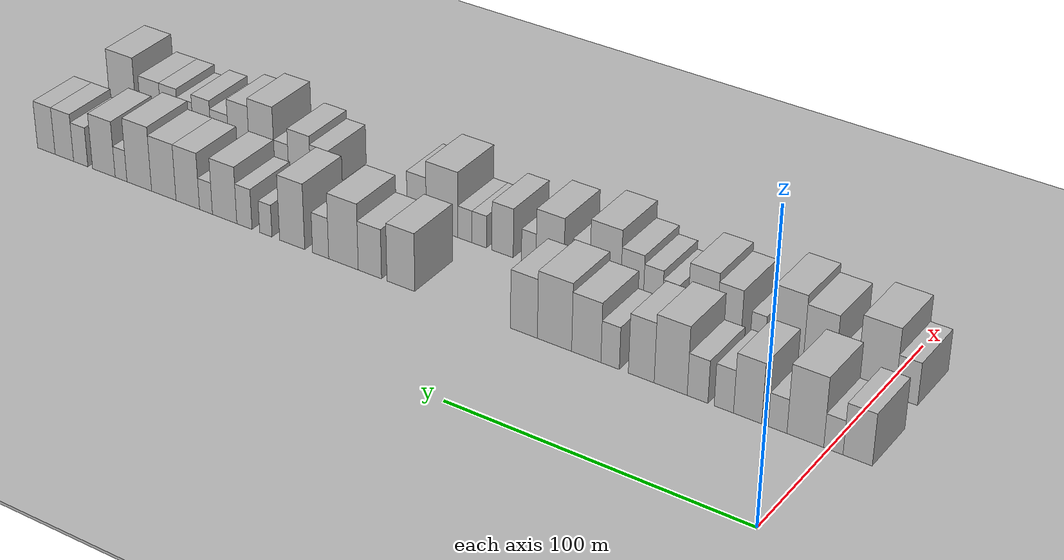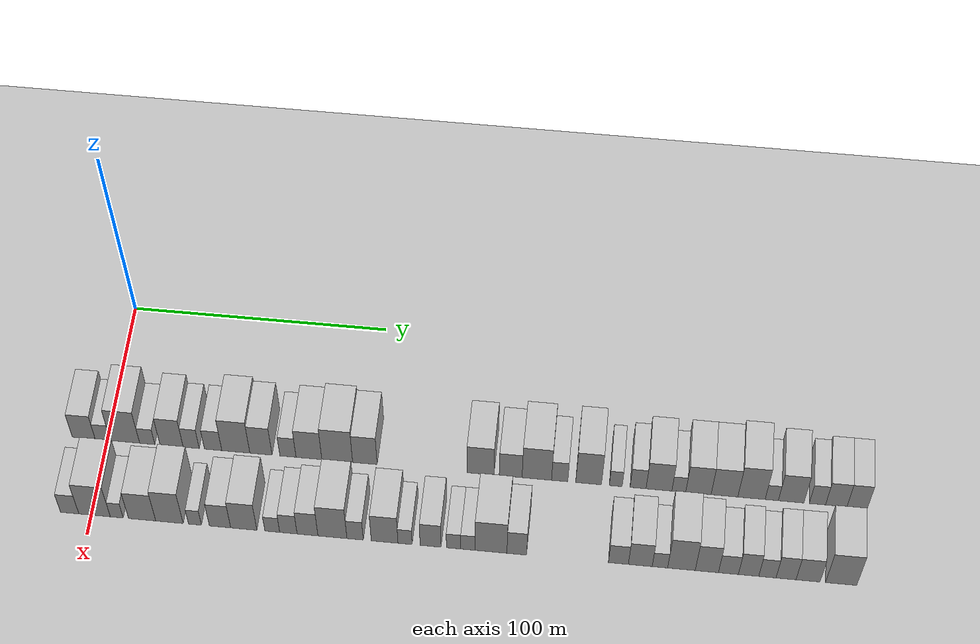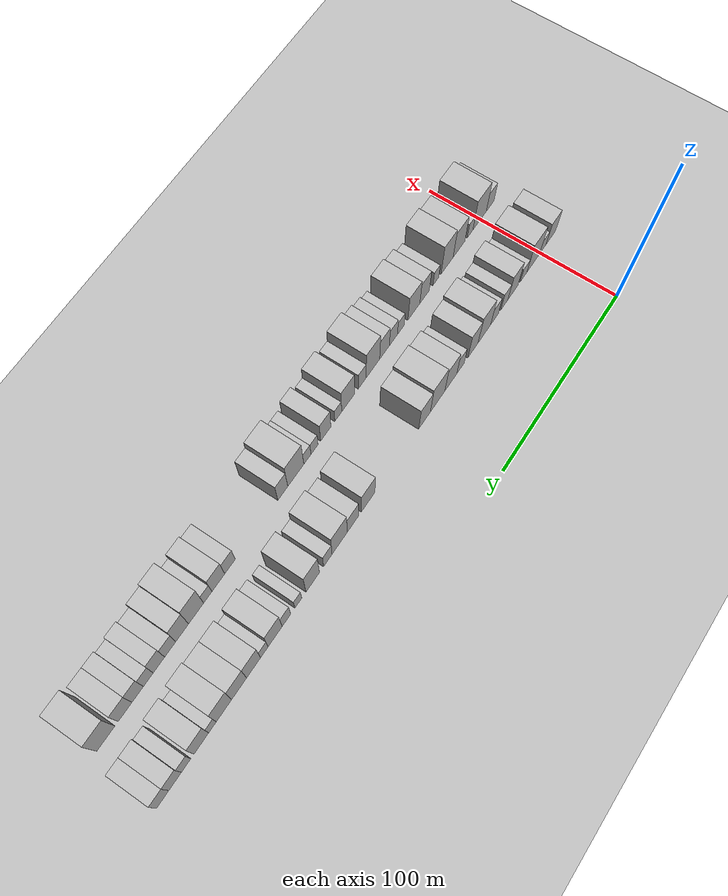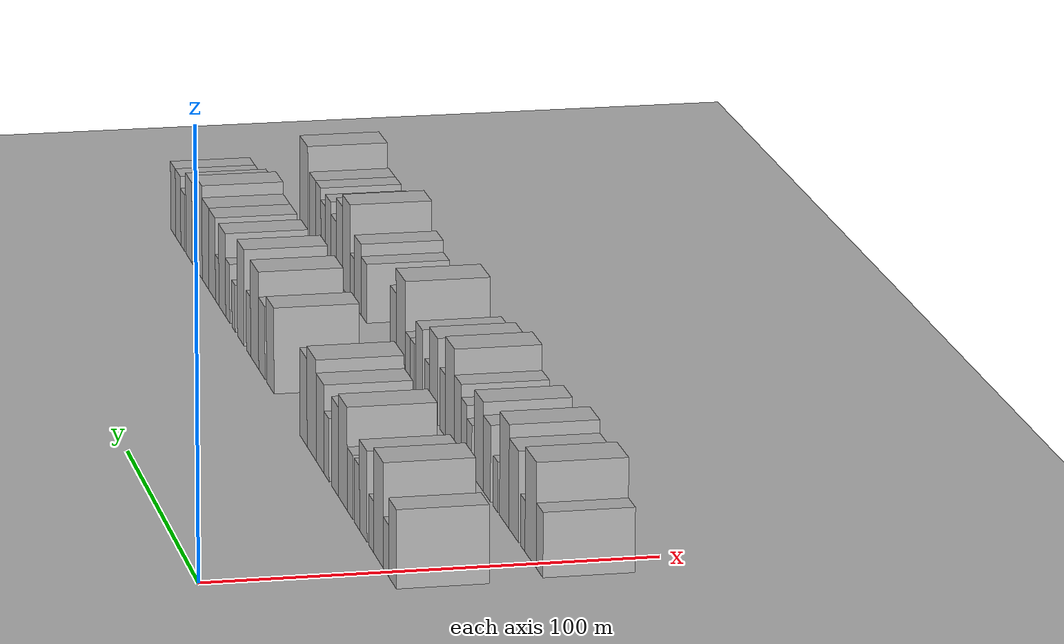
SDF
<sdf version="1.6">
 <world name="default">
  <include><name>ground_plane_1</name><uri>model://HANNAS_ground_plane</uri></include>
  <include>
   <name>ground_plane_2</name>
   <uri>model://HANNAS_ground_plane</uri>
   <pose>100 0 0  0 0 0</pose>
  </include>
  <model name="building_32">
   <static>1</static>
   <pose>50.0000 -9.0547 0 0.000000 0.000000 0.000000</pose>
   <link name="link">
    <pose>0 0 9.00 0 0 0</pose>
    <collision name="collision"><geometry><box><size>20.0000 8.8566 18.0000</size></box></geometry></collision>
    <visual name="visual">
     <cast_shadows>0</cast_shadows>
     <geometry><box><size>20.0000 8.8566 18.0000</size></box></geometry>
     <material>
      <script>
       <uri>model://HANNAS_wall/materials/scripts</uri>
       <uri>model://HANNAS_wall/materials/textures</uri>
       <name>vrc/HANNAS_wall</name>
      </script>
     </material>
    </visual>
   </link>
  </model>
  <model name="building_33">
   <static>1</static>
   <pose>50.0000 -1.6798 0 0.000000 0.000000 0.000000</pose>
   <link name="link">
    <pose>0 0 6.00 0 0 0</pose>
    <collision name="collision"><geometry><box><size>20.0000 5.8933 12.0000</size></box></geometry></collision>
    <visual name="visual">
     <cast_shadows>0</cast_shadows>
     <geometry><box><size>20.0000 5.8933 12.0000</size></box></geometry>
     <material>
      <script>
       <uri>model://HANNAS_wall/materials/scripts</uri>
       <uri>model://HANNAS_wall/materials/textures</uri>
       <name>vrc/HANNAS_wall</name>
      </script>
     </material>
    </visual>
   </link>
  </model>
  <model name="building_34">
   <static>1</static>
   <pose>50.0000 6.9483 0 0.000000 0.000000 0.000000</pose>
   <link name="link">
    <pose>0 0 12.00 0 0 0</pose>
    <collision name="collision"><geometry><box><size>20.0000 11.3630 24.0000</size></box></geometry></collision>
    <visual name="visual">
     <cast_shadows>0</cast_shadows>
     <geometry><box><size>20.0000 11.3630 24.0000</size></box></geometry>
     <material>
      <script>
       <uri>model://HANNAS_wall/materials/scripts</uri>
       <uri>model://HANNAS_wall/materials/textures</uri>
       <name>vrc/HANNAS_wall</name>
      </script>
     </material>
    </visual>
   </link>
  </model>
  <model name="building_35">
   <static>1</static>
   <pose>50.0000 15.5650 0 0.000000 0.000000 0.000000</pose>
   <link name="link">
    <pose>0 0 6.00 0 0 0</pose>
    <collision name="collision"><geometry><box><size>20.0000 5.8705 12.0000</size></box></geometry></collision>
    <visual name="visual">
     <cast_shadows>0</cast_shadows>
     <geometry><box><size>20.0000 5.8705 12.0000</size></box></geometry>
     <material>
      <script>
       <uri>model://HANNAS_wall/materials/scripts</uri>
       <uri>model://HANNAS_wall/materials/textures</uri>
       <name>vrc/HANNAS_wall</name>
      </script>
     </material>
    </visual>
   </link>
  </model>
  <model name="building_36">
   <static>1</static>
   <pose>50.0000 24.9754 0 0.000000 0.000000 0.000000</pose>
   <link name="link">
    <pose>0 0 10.50 0 0 0</pose>
    <collision name="collision"><geometry><box><size>20.0000 8.9502 21.0000</size></box></geometry></collision>
    <visual name="visual">
     <cast_shadows>0</cast_shadows>
     <geometry><box><size>20.0000 8.9502 21.0000</size></box></geometry>
     <material>
      <script>
       <uri>model://HANNAS_wall/materials/scripts</uri>
       <uri>model://HANNAS_wall/materials/textures</uri>
       <name>vrc/HANNAS_wall</name>
      </script>
     </material>
    </visual>
   </link>
  </model>
  <model name="building_37">
   <static>1</static>
   <pose>50.0000 32.5412 0 0.000000 0.000000 0.000000</pose>
   <link name="link">
    <pose>0 0 7.50 0 0 0</pose>
    <collision name="collision"><geometry><box><size>20.0000 6.1814 15.0000</size></box></geometry></collision>
    <visual name="visual">
     <cast_shadows>0</cast_shadows>
     <geometry><box><size>20.0000 6.1814 15.0000</size></box></geometry>
     <material>
      <script>
       <uri>model://HANNAS_wall/materials/scripts</uri>
       <uri>model://HANNAS_wall/materials/textures</uri>
       <name>vrc/HANNAS_wall</name>
      </script>
     </material>
    </visual>
   </link>
  </model>
  <model name="building_38">
   <static>1</static>
   <pose>50.0000 40.9875 0 0.000000 0.000000 0.000000</pose>
   <link name="link">
    <pose>0 0 7.50 0 0 0</pose>
    <collision name="collision"><geometry><box><size>20.0000 6.7112 15.0000</size></box></geometry></collision>
    <visual name="visual">
     <cast_shadows>0</cast_shadows>
     <geometry><box><size>20.0000 6.7112 15.0000</size></box></geometry>
     <material>
      <script>
       <uri>model://HANNAS_wall/materials/scripts</uri>
       <uri>model://HANNAS_wall/materials/textures</uri>
       <name>vrc/HANNAS_wall</name>
      </script>
     </material>
    </visual>
   </link>
  </model>
  <model name="building_39">
   <static>1</static>
   <pose>50.0000 49.7441 0 0.000000 0.000000 0.000000</pose>
   <link name="link">
    <pose>0 0 12.00 0 0 0</pose>
    <collision name="collision"><geometry><box><size>20.0000 10.8022 24.0000</size></box></geometry></collision>
    <visual name="visual">
     <cast_shadows>0</cast_shadows>
     <geometry><box><size>20.0000 10.8022 24.0000</size></box></geometry>
     <material>
      <script>
       <uri>model://HANNAS_wall/materials/scripts</uri>
       <uri>model://HANNAS_wall/materials/textures</uri>
       <name>vrc/HANNAS_wall</name>
      </script>
     </material>
    </visual>
   </link>
  </model>
  <model name="building_40">
   <static>1</static>
   <pose>50.0000 59.4152 0 0.000000 0.000000 0.000000</pose>
   <link name="link">
    <pose>0 0 10.50 0 0 0</pose>
    <collision name="collision"><geometry><box><size>20.0000 8.5400 21.0000</size></box></geometry></collision>
    <visual name="visual">
     <cast_shadows>0</cast_shadows>
     <geometry><box><size>20.0000 8.5400 21.0000</size></box></geometry>
     <material>
      <script>
       <uri>model://HANNAS_wall/materials/scripts</uri>
       <uri>model://HANNAS_wall/materials/textures</uri>
       <name>vrc/HANNAS_wall</name>
      </script>
     </material>
    </visual>
   </link>
  </model>
  <model name="building_41">
   <static>1</static>
   <pose>50.0000 69.7867 0 0.000000 0.000000 0.000000</pose>
   <link name="link">
    <pose>0 0 7.50 0 0 0</pose>
    <collision name="collision"><geometry><box><size>20.0000 6.2029 15.0000</size></box></geometry></collision>
    <visual name="visual">
     <cast_shadows>0</cast_shadows>
     <geometry><box><size>20.0000 6.2029 15.0000</size></box></geometry>
     <material>
      <script>
       <uri>model://HANNAS_wall/materials/scripts</uri>
       <uri>model://HANNAS_wall/materials/textures</uri>
       <name>vrc/HANNAS_wall</name>
      </script>
     </material>
    </visual>
   </link>
  </model>
  <model name="building_42">
   <static>1</static>
   <pose>50.0000 77.8425 0 0.000000 0.000000 0.000000</pose>
   <link name="link">
    <pose>0 0 10.50 0 0 0</pose>
    <collision name="collision"><geometry><box><size>20.0000 9.9086 21.0000</size></box></geometry></collision>
    <visual name="visual">
     <cast_shadows>0</cast_shadows>
     <geometry><box><size>20.0000 9.9086 21.0000</size></box></geometry>
     <material>
      <script>
       <uri>model://HANNAS_wall/materials/scripts</uri>
       <uri>model://HANNAS_wall/materials/textures</uri>
       <name>vrc/HANNAS_wall</name>
      </script>
     </material>
    </visual>
   </link>
  </model>
  <model name="building_43">
   <static>1</static>
   <pose>50.0000 88.6916 0 0.000000 0.000000 0.000000</pose>
   <link name="link">
    <pose>0 0 12.00 0 0 0</pose>
    <collision name="collision"><geometry><box><size>20.0000 11.7896 24.0000</size></box></geometry></collision>
    <visual name="visual">
     <cast_shadows>0</cast_shadows>
     <geometry><box><size>20.0000 11.7896 24.0000</size></box></geometry>
     <material>
      <script>
       <uri>model://HANNAS_wall/materials/scripts</uri>
       <uri>model://HANNAS_wall/materials/textures</uri>
       <name>vrc/HANNAS_wall</name>
      </script>
     </material>
    </visual>
   </link>
  </model>
  <model name="building_44">
   <static>1</static>
   <pose>50.0000 99.2791 0 0.000000 0.000000 0.000000</pose>
   <link name="link">
    <pose>0 0 10.50 0 0 0</pose>
    <collision name="collision"><geometry><box><size>20.0000 9.3855 21.0000</size></box></geometry></collision>
    <visual name="visual">
     <cast_shadows>0</cast_shadows>
     <geometry><box><size>20.0000 9.3855 21.0000</size></box></geometry>
     <material>
      <script>
       <uri>model://HANNAS_wall/materials/scripts</uri>
       <uri>model://HANNAS_wall/materials/textures</uri>
       <name>vrc/HANNAS_wall</name>
      </script>
     </material>
    </visual>
   </link>
  </model>
  <model name="building_45">
   <static>1</static>
   <pose>50.0000 143.3644 0 0.000000 0.000000 0.000000</pose>
   <link name="link">
    <pose>0 0 10.50 0 0 0</pose>
    <collision name="collision"><geometry><box><size>20.0000 10.2617 21.0000</size></box></geometry></collision>
    <visual name="visual">
     <cast_shadows>0</cast_shadows>
     <geometry><box><size>20.0000 10.2617 21.0000</size></box></geometry>
     <material>
      <script>
       <uri>model://HANNAS_wall/materials/scripts</uri>
       <uri>model://HANNAS_wall/materials/textures</uri>
       <name>vrc/HANNAS_wall</name>
      </script>
     </material>
    </visual>
   </link>
  </model>
  <model name="building_46">
   <static>1</static>
   <pose>50.0000 154.8397 0 0.000000 0.000000 0.000000</pose>
   <link name="link">
    <pose>0 0 9.00 0 0 0</pose>
    <collision name="collision"><geometry><box><size>20.0000 8.6888 18.0000</size></box></geometry></collision>
    <visual name="visual">
     <cast_shadows>0</cast_shadows>
     <geometry><box><size>20.0000 8.6888 18.0000</size></box></geometry>
     <material>
      <script>
       <uri>model://HANNAS_wall/materials/scripts</uri>
       <uri>model://HANNAS_wall/materials/textures</uri>
       <name>vrc/HANNAS_wall</name>
      </script>
     </material>
    </visual>
   </link>
  </model>
  <model name="building_47">
   <static>1</static>
   <pose>50.0000 164.7702 0 0.000000 0.000000 0.000000</pose>
   <link name="link">
    <pose>0 0 12.00 0 0 0</pose>
    <collision name="collision"><geometry><box><size>20.0000 11.1723 24.0000</size></box></geometry></collision>
    <visual name="visual">
     <cast_shadows>0</cast_shadows>
     <geometry><box><size>20.0000 11.1723 24.0000</size></box></geometry>
     <material>
      <script>
       <uri>model://HANNAS_wall/materials/scripts</uri>
       <uri>model://HANNAS_wall/materials/textures</uri>
       <name>vrc/HANNAS_wall</name>
      </script>
     </material>
    </visual>
   </link>
  </model>
  <model name="building_48">
   <static>1</static>
   <pose>50.0000 173.4471 0 0.000000 0.000000 0.000000</pose>
   <link name="link">
    <pose>0 0 7.50 0 0 0</pose>
    <collision name="collision"><geometry><box><size>20.0000 6.1817 15.0000</size></box></geometry></collision>
    <visual name="visual">
     <cast_shadows>0</cast_shadows>
     <geometry><box><size>20.0000 6.1817 15.0000</size></box></geometry>
     <material>
      <script>
       <uri>model://HANNAS_wall/materials/scripts</uri>
       <uri>model://HANNAS_wall/materials/textures</uri>
       <name>vrc/HANNAS_wall</name>
      </script>
     </material>
    </visual>
   </link>
  </model>
  <model name="building_49">
   <static>1</static>
   <pose>50.0000 184.4023 0 0.000000 0.000000 0.000000</pose>
   <link name="link">
    <pose>0 0 12.00 0 0 0</pose>
    <collision name="collision"><geometry><box><size>20.0000 9.7286 24.0000</size></box></geometry></collision>
    <visual name="visual">
     <cast_shadows>0</cast_shadows>
     <geometry><box><size>20.0000 9.7286 24.0000</size></box></geometry>
     <material>
      <script>
       <uri>model://HANNAS_wall/materials/scripts</uri>
       <uri>model://HANNAS_wall/materials/textures</uri>
       <name>vrc/HANNAS_wall</name>
      </script>
     </material>
    </visual>
   </link>
  </model>
  <model name="building_50">
   <static>1</static>
   <pose>50.0000 194.6865 0 0.000000 0.000000 0.000000</pose>
   <link name="link">
    <pose>0 0 6.00 0 0 0</pose>
    <collision name="collision"><geometry><box><size>20.0000 4.8399 12.0000</size></box></geometry></collision>
    <visual name="visual">
     <cast_shadows>0</cast_shadows>
     <geometry><box><size>20.0000 4.8399 12.0000</size></box></geometry>
     <material>
      <script>
       <uri>model://HANNAS_wall/materials/scripts</uri>
       <uri>model://HANNAS_wall/materials/textures</uri>
       <name>vrc/HANNAS_wall</name>
      </script>
     </material>
    </visual>
   </link>
  </model>
  <model name="building_51">
   <static>1</static>
   <pose>50.0000 203.1136 0 0.000000 0.000000 0.000000</pose>
   <link name="link">
    <pose>0 0 7.50 0 0 0</pose>
    <collision name="collision"><geometry><box><size>20.0000 6.0143 15.0000</size></box></geometry></collision>
    <visual name="visual">
     <cast_shadows>0</cast_shadows>
     <geometry><box><size>20.0000 6.0143 15.0000</size></box></geometry>
     <material>
      <script>
       <uri>model://HANNAS_wall/materials/scripts</uri>
       <uri>model://HANNAS_wall/materials/textures</uri>
       <name>vrc/HANNAS_wall</name>
      </script>
     </material>
    </visual>
   </link>
  </model>
  <model name="building_52">
   <static>1</static>
   <pose>50.0000 210.9976 0 0.000000 0.000000 0.000000</pose>
   <link name="link">
    <pose>0 0 10.50 0 0 0</pose>
    <collision name="collision"><geometry><box><size>20.0000 9.7535 21.0000</size></box></geometry></collision>
    <visual name="visual">
     <cast_shadows>0</cast_shadows>
     <geometry><box><size>20.0000 9.7535 21.0000</size></box></geometry>
     <material>
      <script>
       <uri>model://HANNAS_wall/materials/scripts</uri>
       <uri>model://HANNAS_wall/materials/textures</uri>
       <name>vrc/HANNAS_wall</name>
      </script>
     </material>
    </visual>
   </link>
  </model>
  <model name="building_53">
   <static>1</static>
   <pose>50.0000 218.4777 0 0.000000 0.000000 0.000000</pose>
   <link name="link">
    <pose>0 0 6.00 0 0 0</pose>
    <collision name="collision"><geometry><box><size>20.0000 5.2067 12.0000</size></box></geometry></collision>
    <visual name="visual">
     <cast_shadows>0</cast_shadows>
     <geometry><box><size>20.0000 5.2067 12.0000</size></box></geometry>
     <material>
      <script>
       <uri>model://HANNAS_wall/materials/scripts</uri>
       <uri>model://HANNAS_wall/materials/textures</uri>
       <name>vrc/HANNAS_wall</name>
      </script>
     </material>
    </visual>
   </link>
  </model>
  <model name="building_54">
   <static>1</static>
   <pose>50.0000 225.8662 0 0.000000 0.000000 0.000000</pose>
   <link name="link">
    <pose>0 0 10.50 0 0 0</pose>
    <collision name="collision"><geometry><box><size>20.0000 9.5703 21.0000</size></box></geometry></collision>
    <visual name="visual">
     <cast_shadows>0</cast_shadows>
     <geometry><box><size>20.0000 9.5703 21.0000</size></box></geometry>
     <material>
      <script>
       <uri>model://HANNAS_wall/materials/scripts</uri>
       <uri>model://HANNAS_wall/materials/textures</uri>
       <name>vrc/HANNAS_wall</name>
      </script>
     </material>
    </visual>
   </link>
  </model>
  <model name="building_55">
   <static>1</static>
   <pose>50.0000 235.6811 0 0.000000 0.000000 0.000000</pose>
   <link name="link">
    <pose>0 0 10.50 0 0 0</pose>
    <collision name="collision"><geometry><box><size>20.0000 10.0596 21.0000</size></box></geometry></collision>
    <visual name="visual">
     <cast_shadows>0</cast_shadows>
     <geometry><box><size>20.0000 10.0596 21.0000</size></box></geometry>
     <material>
      <script>
       <uri>model://HANNAS_wall/materials/scripts</uri>
       <uri>model://HANNAS_wall/materials/textures</uri>
       <name>vrc/HANNAS_wall</name>
      </script>
     </material>
    </visual>
   </link>
  </model>
  <model name="building_56">
   <static>1</static>
   <pose>50.0000 245.8438 0 0.000000 0.000000 0.000000</pose>
   <link name="link">
    <pose>0 0 12.00 0 0 0</pose>
    <collision name="collision"><geometry><box><size>20.0000 10.2658 24.0000</size></box></geometry></collision>
    <visual name="visual">
     <cast_shadows>0</cast_shadows>
     <geometry><box><size>20.0000 10.2658 24.0000</size></box></geometry>
     <material>
      <script>
       <uri>model://HANNAS_wall/materials/scripts</uri>
       <uri>model://HANNAS_wall/materials/textures</uri>
       <name>vrc/HANNAS_wall</name>
      </script>
     </material>
    </visual>
   </link>
  </model>
  <model name="building_57">
   <static>1</static>
   <pose>50.0000 253.4522 0 0.000000 0.000000 0.000000</pose>
   <link name="link">
    <pose>0 0 6.00 0 0 0</pose>
    <collision name="collision"><geometry><box><size>20.0000 4.9509 12.0000</size></box></geometry></collision>
    <visual name="visual">
     <cast_shadows>0</cast_shadows>
     <geometry><box><size>20.0000 4.9509 12.0000</size></box></geometry>
     <material>
      <script>
       <uri>model://HANNAS_wall/materials/scripts</uri>
       <uri>model://HANNAS_wall/materials/textures</uri>
       <name>vrc/HANNAS_wall</name>
      </script>
     </material>
    </visual>
   </link>
  </model>
  <model name="building_58">
   <static>1</static>
   <pose>50.0000 260.7237 0 0.000000 0.000000 0.000000</pose>
   <link name="link">
    <pose>0 0 10.50 0 0 0</pose>
    <collision name="collision"><geometry><box><size>20.0000 9.5921 21.0000</size></box></geometry></collision>
    <visual name="visual">
     <cast_shadows>0</cast_shadows>
     <geometry><box><size>20.0000 9.5921 21.0000</size></box></geometry>
     <material>
      <script>
       <uri>model://HANNAS_wall/materials/scripts</uri>
       <uri>model://HANNAS_wall/materials/textures</uri>
       <name>vrc/HANNAS_wall</name>
      </script>
     </material>
    </visual>
   </link>
  </model>
  <model name="building_59">
   <static>1</static>
   <pose>50.0000 270.5678 0 0.000000 0.000000 0.000000</pose>
   <link name="link">
    <pose>0 0 7.50 0 0 0</pose>
    <collision name="collision"><geometry><box><size>20.0000 6.0962 15.0000</size></box></geometry></collision>
    <visual name="visual">
     <cast_shadows>0</cast_shadows>
     <geometry><box><size>20.0000 6.0962 15.0000</size></box></geometry>
     <material>
      <script>
       <uri>model://HANNAS_wall/materials/scripts</uri>
       <uri>model://HANNAS_wall/materials/textures</uri>
       <name>vrc/HANNAS_wall</name>
      </script>
     </material>
    </visual>
   </link>
  </model>
  <model name="building_60">
   <static>1</static>
   <pose>50.0000 277.6173 0 0.000000 0.000000 0.000000</pose>
   <link name="link">
    <pose>0 0 9.00 0 0 0</pose>
    <collision name="collision"><geometry><box><size>20.0000 8.0026 18.0000</size></box></geometry></collision>
    <visual name="visual">
     <cast_shadows>0</cast_shadows>
     <geometry><box><size>20.0000 8.0026 18.0000</size></box></geometry>
     <material>
      <script>
       <uri>model://HANNAS_wall/materials/scripts</uri>
       <uri>model://HANNAS_wall/materials/textures</uri>
       <name>vrc/HANNAS_wall</name>
      </script>
     </material>
    </visual>
   </link>
  </model>
  <model name="building_61">
   <static>1</static>
   <pose>50.0000 285.4293 0 0.000000 0.000000 0.000000</pose>
   <link name="link">
    <pose>0 0 9.00 0 0 0</pose>
    <collision name="collision"><geometry><box><size>20.0000 7.6214 18.0000</size></box></geometry></collision>
    <visual name="visual">
     <cast_shadows>0</cast_shadows>
     <geometry><box><size>20.0000 7.6214 18.0000</size></box></geometry>
     <material>
      <script>
       <uri>model://HANNAS_wall/materials/scripts</uri>
       <uri>model://HANNAS_wall/materials/textures</uri>
       <name>vrc/HANNAS_wall</name>
      </script>
     </material>
    </visual>
   </link>
  </model>
  <model name="building_92">
   <static>1</static>
   <pose>82.0000 -8.1214 0 0.000000 0.000000 0.000000</pose>
   <link name="link">
    <pose>0 0 7.50 0 0 0</pose>
    <collision name="collision"><geometry><box><size>20.0000 6.9584 15.0000</size></box></geometry></collision>
    <visual name="visual">
     <cast_shadows>0</cast_shadows>
     <geometry><box><size>20.0000 6.9584 15.0000</size></box></geometry>
     <material>
      <script>
       <uri>model://HANNAS_wall/materials/scripts</uri>
       <uri>model://HANNAS_wall/materials/textures</uri>
       <name>vrc/HANNAS_wall</name>
      </script>
     </material>
    </visual>
   </link>
  </model>
  <model name="building_93">
   <static>1</static>
   <pose>82.0000 1.3312 0 0.000000 0.000000 0.000000</pose>
   <link name="link">
    <pose>0 0 12.00 0 0 0</pose>
    <collision name="collision"><geometry><box><size>20.0000 11.9467 24.0000</size></box></geometry></collision>
    <visual name="visual">
     <cast_shadows>0</cast_shadows>
     <geometry><box><size>20.0000 11.9467 24.0000</size></box></geometry>
     <material>
      <script>
       <uri>model://HANNAS_wall/materials/scripts</uri>
       <uri>model://HANNAS_wall/materials/textures</uri>
       <name>vrc/HANNAS_wall</name>
      </script>
     </material>
    </visual>
   </link>
  </model>
  <model name="building_94">
   <static>1</static>
   <pose>82.0000 9.7539 0 0.000000 0.000000 0.000000</pose>
   <link name="link">
    <pose>0 0 6.00 0 0 0</pose>
    <collision name="collision"><geometry><box><size>20.0000 4.8987 12.0000</size></box></geometry></collision>
    <visual name="visual">
     <cast_shadows>0</cast_shadows>
     <geometry><box><size>20.0000 4.8987 12.0000</size></box></geometry>
     <material>
      <script>
       <uri>model://HANNAS_wall/materials/scripts</uri>
       <uri>model://HANNAS_wall/materials/textures</uri>
       <name>vrc/HANNAS_wall</name>
      </script>
     </material>
    </visual>
   </link>
  </model>
  <model name="building_95">
   <static>1</static>
   <pose>82.0000 19.3545 0 0.000000 0.000000 0.000000</pose>
   <link name="link">
    <pose>0 0 10.50 0 0 0</pose>
    <collision name="collision"><geometry><box><size>20.0000 10.3026 21.0000</size></box></geometry></collision>
    <visual name="visual">
     <cast_shadows>0</cast_shadows>
     <geometry><box><size>20.0000 10.3026 21.0000</size></box></geometry>
     <material>
      <script>
       <uri>model://HANNAS_wall/materials/scripts</uri>
       <uri>model://HANNAS_wall/materials/textures</uri>
       <name>vrc/HANNAS_wall</name>
      </script>
     </material>
    </visual>
   </link>
  </model>
  <model name="building_96">
   <static>1</static>
   <pose>82.0000 29.7015 0 0.000000 0.000000 0.000000</pose>
   <link name="link">
    <pose>0 0 12.00 0 0 0</pose>
    <collision name="collision"><geometry><box><size>20.0000 10.3913 24.0000</size></box></geometry></collision>
    <visual name="visual">
     <cast_shadows>0</cast_shadows>
     <geometry><box><size>20.0000 10.3913 24.0000</size></box></geometry>
     <material>
      <script>
       <uri>model://HANNAS_wall/materials/scripts</uri>
       <uri>model://HANNAS_wall/materials/textures</uri>
       <name>vrc/HANNAS_wall</name>
      </script>
     </material>
    </visual>
   </link>
  </model>
  <model name="building_97">
   <static>1</static>
   <pose>82.0000 39.3515 0 0.000000 0.000000 0.000000</pose>
   <link name="link">
    <pose>0 0 6.00 0 0 0</pose>
    <collision name="collision"><geometry><box><size>20.0000 4.9087 12.0000</size></box></geometry></collision>
    <visual name="visual">
     <cast_shadows>0</cast_shadows>
     <geometry><box><size>20.0000 4.9087 12.0000</size></box></geometry>
     <material>
      <script>
       <uri>model://HANNAS_wall/materials/scripts</uri>
       <uri>model://HANNAS_wall/materials/textures</uri>
       <name>vrc/HANNAS_wall</name>
      </script>
     </material>
    </visual>
   </link>
  </model>
  <model name="building_98">
   <static>1</static>
   <pose>82.0000 48.8264 0 0.000000 0.000000 0.000000</pose>
   <link name="link">
    <pose>0 0 9.00 0 0 0</pose>
    <collision name="collision"><geometry><box><size>20.0000 8.0411 18.0000</size></box></geometry></collision>
    <visual name="visual">
     <cast_shadows>0</cast_shadows>
     <geometry><box><size>20.0000 8.0411 18.0000</size></box></geometry>
     <material>
      <script>
       <uri>model://HANNAS_wall/materials/scripts</uri>
       <uri>model://HANNAS_wall/materials/textures</uri>
       <name>vrc/HANNAS_wall</name>
      </script>
     </material>
    </visual>
   </link>
  </model>
  <model name="building_99">
   <static>1</static>
   <pose>82.0000 57.7939 0 0.000000 0.000000 0.000000</pose>
   <link name="link">
    <pose>0 0 10.50 0 0 0</pose>
    <collision name="collision"><geometry><box><size>20.0000 9.8940 21.0000</size></box></geometry></collision>
    <visual name="visual">
     <cast_shadows>0</cast_shadows>
     <geometry><box><size>20.0000 9.8940 21.0000</size></box></geometry>
     <material>
      <script>
       <uri>model://HANNAS_wall/materials/scripts</uri>
       <uri>model://HANNAS_wall/materials/textures</uri>
       <name>vrc/HANNAS_wall</name>
      </script>
     </material>
    </visual>
   </link>
  </model>
  <model name="building_100">
   <static>1</static>
   <pose>82.0000 68.5317 0 0.000000 0.000000 0.000000</pose>
   <link name="link">
    <pose>0 0 6.00 0 0 0</pose>
    <collision name="collision"><geometry><box><size>20.0000 5.5816 12.0000</size></box></geometry></collision>
    <visual name="visual">
     <cast_shadows>0</cast_shadows>
     <geometry><box><size>20.0000 5.5816 12.0000</size></box></geometry>
     <material>
      <script>
       <uri>model://HANNAS_wall/materials/scripts</uri>
       <uri>model://HANNAS_wall/materials/textures</uri>
       <name>vrc/HANNAS_wall</name>
      </script>
     </material>
    </visual>
   </link>
  </model>
  <model name="building_101">
   <static>1</static>
   <pose>82.0000 74.5952 0 0.000000 0.000000 0.000000</pose>
   <link name="link">
    <pose>0 0 7.50 0 0 0</pose>
    <collision name="collision"><geometry><box><size>20.0000 6.5453 15.0000</size></box></geometry></collision>
    <visual name="visual">
     <cast_shadows>0</cast_shadows>
     <geometry><box><size>20.0000 6.5453 15.0000</size></box></geometry>
     <material>
      <script>
       <uri>model://HANNAS_wall/materials/scripts</uri>
       <uri>model://HANNAS_wall/materials/textures</uri>
       <name>vrc/HANNAS_wall</name>
      </script>
     </material>
    </visual>
   </link>
  </model>
  <model name="building_102">
   <static>1</static>
   <pose>82.0000 81.7835 0 0.000000 0.000000 0.000000</pose>
   <link name="link">
    <pose>0 0 9.00 0 0 0</pose>
    <collision name="collision"><geometry><box><size>20.0000 7.8313 18.0000</size></box></geometry></collision>
    <visual name="visual">
     <cast_shadows>0</cast_shadows>
     <geometry><box><size>20.0000 7.8313 18.0000</size></box></geometry>
     <material>
      <script>
       <uri>model://HANNAS_wall/materials/scripts</uri>
       <uri>model://HANNAS_wall/materials/textures</uri>
       <name>vrc/HANNAS_wall</name>
      </script>
     </material>
    </visual>
   </link>
  </model>
  <model name="building_103">
   <static>1</static>
   <pose>82.0000 91.1404 0 0.000000 0.000000 0.000000</pose>
   <link name="link">
    <pose>0 0 12.00 0 0 0</pose>
    <collision name="collision"><geometry><box><size>20.0000 10.8824 24.0000</size></box></geometry></collision>
    <visual name="visual">
     <cast_shadows>0</cast_shadows>
     <geometry><box><size>20.0000 10.8824 24.0000</size></box></geometry>
     <material>
      <script>
       <uri>model://HANNAS_wall/materials/scripts</uri>
       <uri>model://HANNAS_wall/materials/textures</uri>
       <name>vrc/HANNAS_wall</name>
      </script>
     </material>
    </visual>
   </link>
  </model>
  <model name="building_104">
   <static>1</static>
   <pose>82.0000 99.6464 0 0.000000 0.000000 0.000000</pose>
   <link name="link">
    <pose>0 0 7.50 0 0 0</pose>
    <collision name="collision"><geometry><box><size>20.0000 6.1297 15.0000</size></box></geometry></collision>
    <visual name="visual">
     <cast_shadows>0</cast_shadows>
     <geometry><box><size>20.0000 6.1297 15.0000</size></box></geometry>
     <material>
      <script>
       <uri>model://HANNAS_wall/materials/scripts</uri>
       <uri>model://HANNAS_wall/materials/textures</uri>
       <name>vrc/HANNAS_wall</name>
      </script>
     </material>
    </visual>
   </link>
  </model>
  <model name="building_105">
   <static>1</static>
   <pose>82.0000 110.7050 0 0.000000 0.000000 0.000000</pose>
   <link name="link">
    <pose>0 0 10.50 0 0 0</pose>
    <collision name="collision"><geometry><box><size>20.0000 9.9876 21.0000</size></box></geometry></collision>
    <visual name="visual">
     <cast_shadows>0</cast_shadows>
     <geometry><box><size>20.0000 9.9876 21.0000</size></box></geometry>
     <material>
      <script>
       <uri>model://HANNAS_wall/materials/scripts</uri>
       <uri>model://HANNAS_wall/materials/textures</uri>
       <name>vrc/HANNAS_wall</name>
      </script>
     </material>
    </visual>
   </link>
  </model>
  <model name="building_106">
   <static>1</static>
   <pose>82.0000 118.3395 0 0.000000 0.000000 0.000000</pose>
   <link name="link">
    <pose>0 0 6.00 0 0 0</pose>
    <collision name="collision"><geometry><box><size>20.0000 5.2813 12.0000</size></box></geometry></collision>
    <visual name="visual">
     <cast_shadows>0</cast_shadows>
     <geometry><box><size>20.0000 5.2813 12.0000</size></box></geometry>
     <material>
      <script>
       <uri>model://HANNAS_wall/materials/scripts</uri>
       <uri>model://HANNAS_wall/materials/textures</uri>
       <name>vrc/HANNAS_wall</name>
      </script>
     </material>
    </visual>
   </link>
  </model>
  <model name="building_107">
   <static>1</static>
   <pose>82.0000 127.8945 0 0.000000 0.000000 0.000000</pose>
   <link name="link">
    <pose>0 0 9.00 0 0 0</pose>
    <collision name="collision"><geometry><box><size>20.0000 7.8286 18.0000</size></box></geometry></collision>
    <visual name="visual">
     <cast_shadows>0</cast_shadows>
     <geometry><box><size>20.0000 7.8286 18.0000</size></box></geometry>
     <material>
      <script>
       <uri>model://HANNAS_wall/materials/scripts</uri>
       <uri>model://HANNAS_wall/materials/textures</uri>
       <name>vrc/HANNAS_wall</name>
      </script>
     </material>
    </visual>
   </link>
  </model>
  <model name="building_108">
   <static>1</static>
   <pose>82.0000 136.4734 0 0.000000 0.000000 0.000000</pose>
   <link name="link">
    <pose>0 0 6.00 0 0 0</pose>
    <collision name="collision"><geometry><box><size>20.0000 5.3293 12.0000</size></box></geometry></collision>
    <visual name="visual">
     <cast_shadows>0</cast_shadows>
     <geometry><box><size>20.0000 5.3293 12.0000</size></box></geometry>
     <material>
      <script>
       <uri>model://HANNAS_wall/materials/scripts</uri>
       <uri>model://HANNAS_wall/materials/textures</uri>
       <name>vrc/HANNAS_wall</name>
      </script>
     </material>
    </visual>
   </link>
  </model>
  <model name="building_109">
   <static>1</static>
   <pose>82.0000 141.7924 0 0.000000 0.000000 0.000000</pose>
   <link name="link">
    <pose>0 0 6.00 0 0 0</pose>
    <collision name="collision"><geometry><box><size>20.0000 5.3087 12.0000</size></box></geometry></collision>
    <visual name="visual">
     <cast_shadows>0</cast_shadows>
     <geometry><box><size>20.0000 5.3087 12.0000</size></box></geometry>
     <material>
      <script>
       <uri>model://HANNAS_wall/materials/scripts</uri>
       <uri>model://HANNAS_wall/materials/textures</uri>
       <name>vrc/HANNAS_wall</name>
      </script>
     </material>
    </visual>
   </link>
  </model>
  <model name="building_110">
   <static>1</static>
   <pose>82.0000 150.4068 0 0.000000 0.000000 0.000000</pose>
   <link name="link">
    <pose>0 0 12.00 0 0 0</pose>
    <collision name="collision"><geometry><box><size>20.0000 11.9202 24.0000</size></box></geometry></collision>
    <visual name="visual">
     <cast_shadows>0</cast_shadows>
     <geometry><box><size>20.0000 11.9202 24.0000</size></box></geometry>
     <material>
      <script>
       <uri>model://HANNAS_wall/materials/scripts</uri>
       <uri>model://HANNAS_wall/materials/textures</uri>
       <name>vrc/HANNAS_wall</name>
      </script>
     </material>
    </visual>
   </link>
  </model>
  <model name="building_111">
   <static>1</static>
   <pose>82.0000 160.0184 0 0.000000 0.000000 0.000000</pose>
   <link name="link">
    <pose>0 0 9.00 0 0 0</pose>
    <collision name="collision"><geometry><box><size>20.0000 7.3029 18.0000</size></box></geometry></collision>
    <visual name="visual">
     <cast_shadows>0</cast_shadows>
     <geometry><box><size>20.0000 7.3029 18.0000</size></box></geometry>
     <material>
      <script>
       <uri>model://HANNAS_wall/materials/scripts</uri>
       <uri>model://HANNAS_wall/materials/textures</uri>
       <name>vrc/HANNAS_wall</name>
      </script>
     </material>
    </visual>
   </link>
  </model>
  <model name="building_112">
   <static>1</static>
   <pose>82.0000 197.7574 0 0.000000 0.000000 0.000000</pose>
   <link name="link">
    <pose>0 0 7.50 0 0 0</pose>
    <collision name="collision"><geometry><box><size>20.0000 7.3917 15.0000</size></box></geometry></collision>
    <visual name="visual">
     <cast_shadows>0</cast_shadows>
     <geometry><box><size>20.0000 7.3917 15.0000</size></box></geometry>
     <material>
      <script>
       <uri>model://HANNAS_wall/materials/scripts</uri>
       <uri>model://HANNAS_wall/materials/textures</uri>
       <name>vrc/HANNAS_wall</name>
      </script>
     </material>
    </visual>
   </link>
  </model>
  <model name="building_113">
   <static>1</static>
   <pose>82.0000 205.8638 0 0.000000 0.000000 0.000000</pose>
   <link name="link">
    <pose>0 0 9.00 0 0 0</pose>
    <collision name="collision"><geometry><box><size>20.0000 8.8211 18.0000</size></box></geometry></collision>
    <visual name="visual">
     <cast_shadows>0</cast_shadows>
     <geometry><box><size>20.0000 8.8211 18.0000</size></box></geometry>
     <material>
      <script>
       <uri>model://HANNAS_wall/materials/scripts</uri>
       <uri>model://HANNAS_wall/materials/textures</uri>
       <name>vrc/HANNAS_wall</name>
      </script>
     </material>
    </visual>
   </link>
  </model>
  <model name="building_114">
   <static>1</static>
   <pose>82.0000 213.1219 0 0.000000 0.000000 0.000000</pose>
   <link name="link">
    <pose>0 0 6.00 0 0 0</pose>
    <collision name="collision"><geometry><box><size>20.0000 5.6952 12.0000</size></box></geometry></collision>
    <visual name="visual">
     <cast_shadows>0</cast_shadows>
     <geometry><box><size>20.0000 5.6952 12.0000</size></box></geometry>
     <material>
      <script>
       <uri>model://HANNAS_wall/materials/scripts</uri>
       <uri>model://HANNAS_wall/materials/textures</uri>
       <name>vrc/HANNAS_wall</name>
      </script>
     </material>
    </visual>
   </link>
  </model>
  <model name="building_115">
   <static>1</static>
   <pose>82.0000 221.0678 0 0.000000 0.000000 0.000000</pose>
   <link name="link">
    <pose>0 0 12.00 0 0 0</pose>
    <collision name="collision"><geometry><box><size>20.0000 10.1966 24.0000</size></box></geometry></collision>
    <visual name="visual">
     <cast_shadows>0</cast_shadows>
     <geometry><box><size>20.0000 10.1966 24.0000</size></box></geometry>
     <material>
      <script>
       <uri>model://HANNAS_wall/materials/scripts</uri>
       <uri>model://HANNAS_wall/materials/textures</uri>
       <name>vrc/HANNAS_wall</name>
      </script>
     </material>
    </visual>
   </link>
  </model>
  <model name="building_116">
   <static>1</static>
   <pose>82.0000 230.4482 0 0.000000 0.000000 0.000000</pose>
   <link name="link">
    <pose>0 0 10.50 0 0 0</pose>
    <collision name="collision"><geometry><box><size>20.0000 8.5644 21.0000</size></box></geometry></collision>
    <visual name="visual">
     <cast_shadows>0</cast_shadows>
     <geometry><box><size>20.0000 8.5644 21.0000</size></box></geometry>
     <material>
      <script>
       <uri>model://HANNAS_wall/materials/scripts</uri>
       <uri>model://HANNAS_wall/materials/textures</uri>
       <name>vrc/HANNAS_wall</name>
      </script>
     </material>
    </visual>
   </link>
  </model>
  <model name="building_117">
   <static>1</static>
   <pose>82.0000 238.4074 0 0.000000 0.000000 0.000000</pose>
   <link name="link">
    <pose>0 0 7.50 0 0 0</pose>
    <collision name="collision"><geometry><box><size>20.0000 7.3539 15.0000</size></box></geometry></collision>
    <visual name="visual">
     <cast_shadows>0</cast_shadows>
     <geometry><box><size>20.0000 7.3539 15.0000</size></box></geometry>
     <material>
      <script>
       <uri>model://HANNAS_wall/materials/scripts</uri>
       <uri>model://HANNAS_wall/materials/textures</uri>
       <name>vrc/HANNAS_wall</name>
      </script>
     </material>
    </visual>
   </link>
  </model>
  <model name="building_118">
   <static>1</static>
   <pose>82.0000 245.8304 0 0.000000 0.000000 0.000000</pose>
   <link name="link">
    <pose>0 0 9.00 0 0 0</pose>
    <collision name="collision"><geometry><box><size>20.0000 7.4923 18.0000</size></box></geometry></collision>
    <visual name="visual">
     <cast_shadows>0</cast_shadows>
     <geometry><box><size>20.0000 7.4923 18.0000</size></box></geometry>
     <material>
      <script>
       <uri>model://HANNAS_wall/materials/scripts</uri>
       <uri>model://HANNAS_wall/materials/textures</uri>
       <name>vrc/HANNAS_wall</name>
      </script>
     </material>
    </visual>
   </link>
  </model>
  <model name="building_119">
   <static>1</static>
   <pose>82.0000 252.7577 0 0.000000 0.000000 0.000000</pose>
   <link name="link">
    <pose>0 0 7.50 0 0 0</pose>
    <collision name="collision"><geometry><box><size>20.0000 6.3623 15.0000</size></box></geometry></collision>
    <visual name="visual">
     <cast_shadows>0</cast_shadows>
     <geometry><box><size>20.0000 6.3623 15.0000</size></box></geometry>
     <material>
      <script>
       <uri>model://HANNAS_wall/materials/scripts</uri>
       <uri>model://HANNAS_wall/materials/textures</uri>
       <name>vrc/HANNAS_wall</name>
      </script>
     </material>
    </visual>
   </link>
  </model>
  <model name="building_120">
   <static>1</static>
   <pose>82.0000 259.6037 0 0.000000 0.000000 0.000000</pose>
   <link name="link">
    <pose>0 0 9.00 0 0 0</pose>
    <collision name="collision"><geometry><box><size>20.0000 7.3298 18.0000</size></box></geometry></collision>
    <visual name="visual">
     <cast_shadows>0</cast_shadows>
     <geometry><box><size>20.0000 7.3298 18.0000</size></box></geometry>
     <material>
      <script>
       <uri>model://HANNAS_wall/materials/scripts</uri>
       <uri>model://HANNAS_wall/materials/textures</uri>
       <name>vrc/HANNAS_wall</name>
      </script>
     </material>
    </visual>
   </link>
  </model>
  <model name="building_121">
   <static>1</static>
   <pose>82.0000 267.6860 0 0.000000 0.000000 0.000000</pose>
   <link name="link">
    <pose>0 0 9.00 0 0 0</pose>
    <collision name="collision"><geometry><box><size>20.0000 8.8346 18.0000</size></box></geometry></collision>
    <visual name="visual">
     <cast_shadows>0</cast_shadows>
     <geometry><box><size>20.0000 8.8346 18.0000</size></box></geometry>
     <material>
      <script>
       <uri>model://HANNAS_wall/materials/scripts</uri>
       <uri>model://HANNAS_wall/materials/textures</uri>
       <name>vrc/HANNAS_wall</name>
      </script>
     </material>
    </visual>
   </link>
  </model>
  <model name="building_122">
   <static>1</static>
   <pose>82.0000 279.8298 0 0.000000 0.000000 0.000000</pose>
   <link name="link">
    <pose>0 0 12.00 0 0 0</pose>
    <collision name="collision"><geometry><box><size>20.0000 11.4530 24.0000</size></box></geometry></collision>
    <visual name="visual">
     <cast_shadows>0</cast_shadows>
     <geometry><box><size>20.0000 11.4530 24.0000</size></box></geometry>
     <material>
      <script>
       <uri>model://HANNAS_wall/materials/scripts</uri>
       <uri>model://HANNAS_wall/materials/textures</uri>
       <name>vrc/HANNAS_wall</name>
      </script>
     </material>
    </visual>
   </link>
  </model>
 </world>
</sdf>
